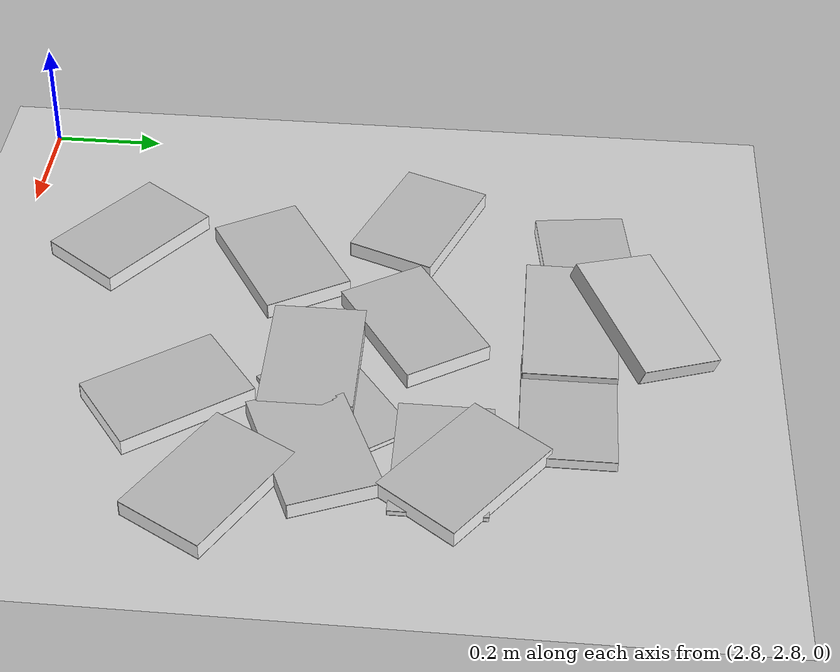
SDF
<sdf version="1.6">
 <world name="default">
  <model name="ground_plane">
   <static>1</static>
   <link name="link">
    <collision name="collision">
     <geometry><plane><normal>0 0 1</normal><size>100 100</size></plane></geometry>
     <surface><friction><ode><mu>100</mu><mu2>50</mu2></ode></friction></surface>
    </collision>
    <visual name="visual">
     <cast_shadows>0</cast_shadows>
     <geometry><plane><normal>0 0 1</normal><size>100 100</size></plane></geometry>
     <material>
      <script><uri>file://media/materials/scripts/gazebo.material</uri><name>Gazebo/Grey</name></script>
     </material>
    </visual>
   </link>
  </model>
  <model name="book_16">
   <link name="cover">
    <pose>0 -0.000108 0.015405 0 -0 0</pose>
    <visual name="visual">
     <geometry><box><size>0.245 0.16 0.03</size></box></geometry>
     <material>
      <script>
       <uri>model://book_16/materials/scripts</uri>
       <uri>model://book_16/materials/textures</uri>
       <name>book_16</name>
      </script>
     </material>
    </visual>
    <collision name="collision"><geometry><box><size>0.245 0.16 0.03</size></box></geometry></collision>
   </link>
   <link name="page">
    <pose>0 0.000608 0.015405 0 -0 0</pose>
    <visual name="visual">
     <geometry><box><size>0.24502 0.15862 0.028</size></box></geometry>
     <material>
      <lighting>1</lighting>
      <ambient>1 1 1 1</ambient>
      <diffuse>1 1 1 1</diffuse>
      <specular>0.01 0.01 0.01 1</specular>
      <emissive>0 0 0 1</emissive>
      <shader type="vertex"><normal_map>__default__</normal_map></shader>
     </material>
    </visual>
    <collision name="collision"><geometry><box><size>0.245 0.16 0.03</size></box></geometry></collision>
   </link>
   <static>1</static>
   <pose>3.31961 3.54327 0 0 -0 0.567047</pose>
  </model>
  <model name="book_6">
   <link name="cover">
    <pose>0 -0.000108 0.01 0 -0 0</pose>
    <visual name="visual">
     <geometry><box><size>0.245 0.16 0.02</size></box></geometry>
     <material>
      <script>
       <uri>model://book_6/materials/scripts</uri>
       <uri>model://book_6/materials/textures</uri>
       <name>book_6</name>
      </script>
     </material>
    </visual>
    <collision name="collision"><geometry><box><size>0.245 0.16 0.02</size></box></geometry></collision>
   </link>
   <link name="page">
    <pose>0 0.000608 0.01 0 -0 0</pose>
    <visual name="visual">
     <geometry><box><size>0.24502 0.15862 0.018</size></box></geometry>
     <material>
      <lighting>1</lighting>
      <ambient>1 1 1 1</ambient>
      <diffuse>1 1 1 1</diffuse>
      <specular>0.01 0.01 0.01 1</specular>
      <emissive>0 0 0 1</emissive>
      <shader type="vertex"><normal_map>__default__</normal_map></shader>
     </material>
    </visual>
    <collision name="collision"><geometry><box><size>0.245 0.16 0.018</size></box></geometry></collision>
   </link>
   <static>1</static>
   <pose>3.50749 3.81102 0 0 -0 0</pose>
  </model>
  <model name="book_15">
   <link name="cover">
    <pose>0 -0.000108 0.015405 0 -0 0</pose>
    <visual name="visual">
     <geometry><box><size>0.245 0.16 0.03</size></box></geometry>
     <material>
      <script>
       <uri>model://book_15/materials/scripts</uri>
       <uri>model://book_15/materials/textures</uri>
       <name>book_15</name>
      </script>
     </material>
    </visual>
    <collision name="collision"><geometry><box><size>0.245 0.16 0.03</size></box></geometry></collision>
   </link>
   <link name="page">
    <pose>0 0.000608 0.015405 0 -0 0</pose>
    <visual name="visual">
     <geometry><box><size>0.24502 0.15862 0.028</size></box></geometry>
     <material>
      <lighting>1</lighting>
      <ambient>1 1 1 1</ambient>
      <diffuse>1 1 1 1</diffuse>
      <specular>0.01 0.01 0.01 1</specular>
      <emissive>0 0 0 1</emissive>
      <shader type="vertex"><normal_map>__default__</normal_map></shader>
     </material>
    </visual>
    <collision name="collision"><geometry><box><size>0.245 0.16 0.03</size></box></geometry></collision>
   </link>
   <static>1</static>
   <pose>3.1322 3.8417 0 0 0 -3.00897</pose>
  </model>
  <model name="book_11">
   <link name="cover">
    <pose>0 -0.000108 0.015405 0 -0 0</pose>
    <visual name="visual">
     <geometry><box><size>0.245 0.16 0.03</size></box></geometry>
     <material>
      <script>
       <uri>model://book_11/materials/scripts</uri>
       <uri>model://book_11/materials/textures</uri>
       <name>book_11</name>
      </script>
     </material>
    </visual>
    <collision name="collision"><geometry><box><size>0.245 0.16 0.03</size></box></geometry></collision>
   </link>
   <link name="page">
    <pose>0 0.000608 0.015405 0 -0 0</pose>
    <visual name="visual">
     <geometry><box><size>0.24502 0.15862 0.028</size></box></geometry>
     <material>
      <lighting>1</lighting>
      <ambient>1 1 1 1</ambient>
      <diffuse>1 1 1 1</diffuse>
      <specular>0.01 0.01 0.01 1</specular>
      <emissive>0 0 0 1</emissive>
      <shader type="vertex"><normal_map>__default__</normal_map></shader>
     </material>
    </visual>
    <collision name="collision"><geometry><box><size>0.245 0.16 0.03</size></box></geometry></collision>
   </link>
   <static>1</static>
   <pose>3.52986 3.14711 0 0 0 -0.938052</pose>
  </model>
  <model name="book_11_0">
   <link name="cover">
    <pose>0 -0.000108 0.015405 0 -0 0</pose>
    <visual name="visual">
     <geometry><box><size>0.245 0.16 0.03</size></box></geometry>
     <material>
      <script>
       <uri>model://book_11/materials/scripts</uri>
       <uri>model://book_11/materials/textures</uri>
       <name>book_11</name>
      </script>
     </material>
    </visual>
    <collision name="collision"><geometry><box><size>0.245 0.16 0.03</size></box></geometry></collision>
   </link>
   <link name="page">
    <pose>0 0.000608 0.015405 0 -0 0</pose>
    <visual name="visual">
     <geometry><box><size>0.24502 0.15862 0.028</size></box></geometry>
     <material>
      <lighting>1</lighting>
      <ambient>1 1 1 1</ambient>
      <diffuse>1 1 1 1</diffuse>
      <specular>0.01 0.01 0.01 1</specular>
      <emissive>0 0 0 1</emissive>
      <shader type="vertex"><normal_map>__default__</normal_map></shader>
     </material>
    </visual>
    <collision name="collision"><geometry><box><size>0.245 0.16 0.03</size></box></geometry></collision>
   </link>
   <static>1</static>
   <pose>3.11517 3.0052 0 0 0 -0.640371</pose>
  </model>
  <model name="book_19">
   <link name="cover">
    <pose>0 -0.000108 0.015405 0 -0 0</pose>
    <visual name="visual">
     <geometry><box><size>0.245 0.16 0.03</size></box></geometry>
     <material>
      <script>
       <uri>model://book_19/materials/scripts</uri>
       <uri>model://book_19/materials/textures</uri>
       <name>book_19</name>
      </script>
     </material>
    </visual>
    <collision name="collision"><geometry><box><size>0.245 0.16 0.03</size></box></geometry></collision>
   </link>
   <link name="page">
    <pose>0 0.000608 0.015405 0 -0 0</pose>
    <visual name="visual">
     <geometry><box><size>0.24502 0.15862 0.028</size></box></geometry>
     <material>
      <lighting>1</lighting>
      <ambient>1 1 1 1</ambient>
      <diffuse>1 1 1 1</diffuse>
      <specular>0.01 0.01 0.01 1</specular>
      <emissive>0 0 0 1</emissive>
      <shader type="vertex"><normal_map>__default__</normal_map></shader>
     </material>
    </visual>
    <collision name="collision"><geometry><box><size>0.245 0.16 0.03</size></box></geometry></collision>
   </link>
   <static>1</static>
   <pose>3.16289 3.2915 0 0 -0 0.532423</pose>
  </model>
  <model name="book_21">
   <link name="cover">
    <pose>0 -0.000108 0.005 0 -0 0</pose>
    <visual name="visual">
     <geometry><box><size>0.245 0.16 0.01</size></box></geometry>
     <material>
      <script>
       <uri>model://book_21/materials/scripts</uri>
       <uri>model://book_21/materials/textures</uri>
       <name>book_21</name>
      </script>
     </material>
    </visual>
    <collision name="collision"><geometry><box><size>0.245 0.16 0.01</size></box></geometry></collision>
   </link>
   <link name="page">
    <pose>0 0.000608 0.005 0 -0 0</pose>
    <visual name="visual">
     <geometry><box><size>0.24502 0.15862 0.008</size></box></geometry>
     <material>
      <lighting>1</lighting>
      <ambient>1 1 1 1</ambient>
      <diffuse>1 1 1 1</diffuse>
      <specular>0.01 0.01 0.01 1</specular>
      <emissive>0 0 0 1</emissive>
      <shader type="vertex"><normal_map>__default__</normal_map></shader>
     </material>
    </visual>
    <collision name="collision"><geometry><box><size>0.245 0.16 0.008</size></box></geometry></collision>
   </link>
   <static>1</static>
   <pose>3.52139 3.42487 0 0 -0 0.629986</pose>
  </model>
  <model name="book_20">
   <link name="cover">
    <pose>0 -0.000108 0.015405 0 -0 0</pose>
    <visual name="visual">
     <geometry><box><size>0.245 0.16 0.03</size></box></geometry>
     <material>
      <script>
       <uri>model://book_20/materials/scripts</uri>
       <uri>model://book_20/materials/textures</uri>
       <name>book_20</name>
      </script>
     </material>
    </visual>
    <collision name="collision"><geometry><box><size>0.245 0.16 0.03</size></box></geometry></collision>
   </link>
   <link name="page">
    <pose>0 0.000608 0.015405 0 -0 0</pose>
    <visual name="visual">
     <geometry><box><size>0.24502 0.15862 0.028</size></box></geometry>
     <material>
      <lighting>1</lighting>
      <ambient>1 1 1 1</ambient>
      <diffuse>1 1 1 1</diffuse>
      <specular>0.01 0.01 0.01 1</specular>
      <emissive>0 0 0 1</emissive>
      <shader type="vertex"><normal_map>__default__</normal_map></shader>
     </material>
    </visual>
    <collision name="collision"><geometry><box><size>0.245 0.16 0.03</size></box></geometry></collision>
   </link>
   <static>1</static>
   <pose>3.63691 3.40369 0 0 -0 0.399455</pose>
  </model>
  <model name="book_1">
   <link name="cover">
    <pose>0 -0.000108 0.015405 0 -0 0</pose>
    <visual name="visual">
     <geometry><box><size>0.245 0.16 0.03</size></box></geometry>
     <material>
      <script>
       <uri>model://book_1/materials/scripts</uri>
       <uri>model://book_1/materials/textures</uri>
       <name>book_1</name>
      </script>
     </material>
    </visual>
    <collision name="collision"><geometry><box><size>0.245 0.16 0.03</size></box></geometry></collision>
   </link>
   <link name="page">
    <pose>0 0.000608 0.015405 0 -0 0</pose>
    <visual name="visual">
     <geometry><box><size>0.24502 0.15862 0.028</size></box></geometry>
     <material>
      <lighting>1</lighting>
      <ambient>1 1 1 1</ambient>
      <diffuse>1 1 1 1</diffuse>
      <specular>0.01 0.01 0.01 1</specular>
      <emissive>0 0 0 1</emissive>
      <shader type="vertex"><normal_map>__default__</normal_map></shader>
     </material>
    </visual>
    <collision name="collision"><geometry><box><size>0.245 0.16 0.03</size></box></geometry></collision>
   </link>
   <static>1</static>
   <pose>3.03385 3.53167 0 0 0 -0.375842</pose>
  </model>
  <model name="book_8">
   <link name="cover">
    <pose>0 -0.000108 0.005 0 -0 0</pose>
    <visual name="visual">
     <geometry><box><size>0.245 0.16 0.01</size></box></geometry>
     <material>
      <script>
       <uri>model://book_8/materials/scripts</uri>
       <uri>model://book_8/materials/textures</uri>
       <name>book_8</name>
      </script>
     </material>
    </visual>
    <collision name="collision"><geometry><box><size>0.245 0.16 0.01</size></box></geometry></collision>
   </link>
   <link name="page">
    <pose>0 0.000608 0.005 0 -0 0</pose>
    <visual name="visual">
     <geometry><box><size>0.24502 0.15862 0.008</size></box></geometry>
     <material>
      <lighting>1</lighting>
      <ambient>1 1 1 1</ambient>
      <diffuse>1 1 1 1</diffuse>
      <specular>0.01 0.01 0.01 1</specular>
      <emissive>0 0 0 1</emissive>
      <shader type="vertex"><normal_map>__default__</normal_map></shader>
     </material>
    </visual>
    <collision name="collision"><geometry><box><size>0.245 0.16 0.008</size></box></geometry></collision>
   </link>
   <static>1</static>
   <pose>3.63552 3.61115 0 0 -0 0</pose>
  </model>
  <model name="book_2">
   <link name="cover">
    <pose>0 -0.000108 0.015405 0 -0 0</pose>
    <visual name="visual">
     <geometry><box><size>0.245 0.16 0.03</size></box></geometry>
     <material>
      <script>
       <uri>model://book_2/materials/scripts</uri>
       <uri>model://book_2/materials/textures</uri>
       <name>book_2</name>
      </script>
     </material>
    </visual>
    <collision name="collision"><geometry><box><size>0.245 0.16 0.03</size></box></geometry></collision>
   </link>
   <link name="page">
    <pose>0 0.000608 0.015405 0 -0 0</pose>
    <visual name="visual">
     <geometry><box><size>0.24502 0.15862 0.028</size></box></geometry>
     <material>
      <lighting>1</lighting>
      <ambient>1 1 1 1</ambient>
      <diffuse>1 1 1 1</diffuse>
      <specular>0.01 0.01 0.01 1</specular>
      <emissive>0 0 0 1</emissive>
      <shader type="vertex"><normal_map>__default__</normal_map></shader>
     </material>
    </visual>
    <collision name="collision"><geometry><box><size>0.245 0.16 0.03</size></box></geometry></collision>
   </link>
   <static>1</static>
   <pose>3.66899 3.64833 0 0 0 -0.640072</pose>
  </model>
  <model name="book_15_0">
   <link name="cover">
    <pose>0 -0.000108 0.015405 0 -0 0</pose>
    <visual name="visual">
     <geometry><box><size>0.245 0.16 0.03</size></box></geometry>
     <material>
      <script>
       <uri>model://book_15/materials/scripts</uri>
       <uri>model://book_15/materials/textures</uri>
       <name>book_15</name>
      </script>
     </material>
    </visual>
    <collision name="collision"><geometry><box><size>0.245 0.16 0.03</size></box></geometry></collision>
   </link>
   <link name="page">
    <pose>0 0.000608 0.015405 0 -0 0</pose>
    <visual name="visual">
     <geometry><box><size>0.24502 0.15862 0.028</size></box></geometry>
     <material>
      <lighting>1</lighting>
      <ambient>1 1 1 1</ambient>
      <diffuse>1 1 1 1</diffuse>
      <specular>0.01 0.01 0.01 1</specular>
      <emissive>0 0 0 1</emissive>
      <shader type="vertex"><normal_map>__default__</normal_map></shader>
     </material>
    </visual>
    <collision name="collision"><geometry><box><size>0.245 0.16 0.03</size></box></geometry></collision>
   </link>
   <static>1</static>
   <pose>3.42875 3.37916 0 0 -0 0</pose>
  </model>
  <model name="book_12">
   <link name="cover">
    <pose>0 -0.000108 0.015405 0 -0 0</pose>
    <visual name="visual">
     <geometry><box><size>0.245 0.16 0.03</size></box></geometry>
     <material>
      <script>
       <uri>model://book_12/materials/scripts</uri>
       <uri>model://book_12/materials/textures</uri>
       <name>book_12</name>
      </script>
     </material>
    </visual>
    <collision name="collision"><geometry><box><size>0.245 0.16 0.03</size></box></geometry></collision>
   </link>
   <link name="page">
    <pose>0 0.000608 0.015405 0 -0 0</pose>
    <visual name="visual">
     <geometry><box><size>0.24502 0.15862 0.028</size></box></geometry>
     <material>
      <lighting>1</lighting>
      <ambient>1 1 1 1</ambient>
      <diffuse>1 1 1 1</diffuse>
      <specular>0.01 0.01 0.01 1</specular>
      <emissive>0 0 0 1</emissive>
      <shader type="vertex"><normal_map>__default__</normal_map></shader>
     </material>
    </visual>
    <collision name="collision"><geometry><box><size>0.245 0.16 0.03</size></box></geometry></collision>
   </link>
   <static>1</static>
   <pose>3.73041 3.24747 0 0 0 -0.525375</pose>
  </model>
  <model name="book_6_clone">
   <link name="cover">
    <pose>0 -0.000108 0.01 0 -0 0</pose>
    <visual name="visual">
     <geometry><box><size>0.245 0.16 0.02</size></box></geometry>
     <material>
      <script>
       <uri>model://book_6/materials/scripts</uri>
       <uri>model://book_6/materials/textures</uri>
       <name>book_6</name>
      </script>
     </material>
    </visual>
    <collision name="collision"><geometry><box><size>0.245 0.16 0.02</size></box></geometry></collision>
   </link>
   <link name="page">
    <pose>0 0.000608 0.01 0 -0 0</pose>
    <visual name="visual">
     <geometry><box><size>0.24502 0.15862 0.018</size></box></geometry>
     <material>
      <lighting>1</lighting>
      <ambient>1 1 1 1</ambient>
      <diffuse>1 1 1 1</diffuse>
      <specular>0.01 0.01 0.01 1</specular>
      <emissive>0 0 0 1</emissive>
      <shader type="vertex"><normal_map>__default__</normal_map></shader>
     </material>
    </visual>
    <collision name="collision"><geometry><box><size>0.245 0.16 0.018</size></box></geometry></collision>
   </link>
   <static>1</static>
   <pose>3.32269 3.81222 0.033474 0 0.154117 0</pose>
  </model>
  <model name="book_16_clone">
   <link name="cover">
    <pose>0 -0.000108 0.015405 0 -0 0</pose>
    <visual name="visual">
     <geometry><box><size>0.245 0.16 0.03</size></box></geometry>
     <material>
      <script>
       <uri>model://book_16/materials/scripts</uri>
       <uri>model://book_16/materials/textures</uri>
       <name>book_16</name>
      </script>
     </material>
    </visual>
    <collision name="collision"><geometry><box><size>0.245 0.16 0.03</size></box></geometry></collision>
   </link>
   <link name="page">
    <pose>0 0.000608 0.015405 0 -0 0</pose>
    <visual name="visual">
     <geometry><box><size>0.24502 0.15862 0.028</size></box></geometry>
     <material>
      <lighting>1</lighting>
      <ambient>1 1 1 1</ambient>
      <diffuse>1 1 1 1</diffuse>
      <specular>0.01 0.01 0.01 1</specular>
      <emissive>0 0 0 1</emissive>
      <shader type="vertex"><normal_map>__default__</normal_map></shader>
     </material>
    </visual>
    <collision name="collision"><geometry><box><size>0.245 0.16 0.03</size></box></geometry></collision>
   </link>
   <static>1</static>
   <pose>3.31626 3.93111 0.047581 -0.228997 0.220317 0.516153</pose>
  </model>
 </world>
</sdf>
